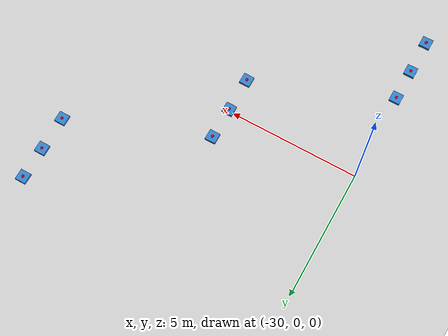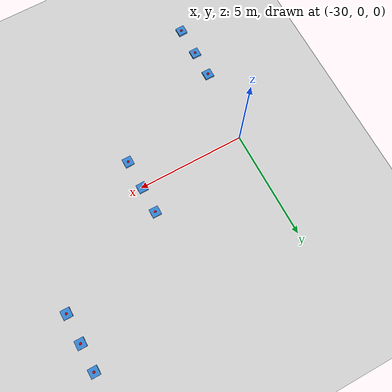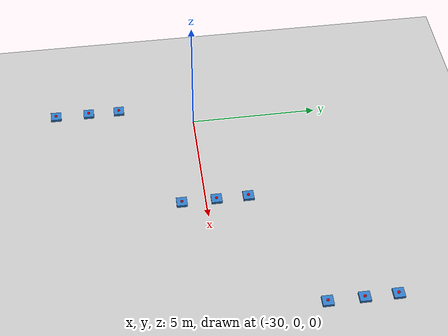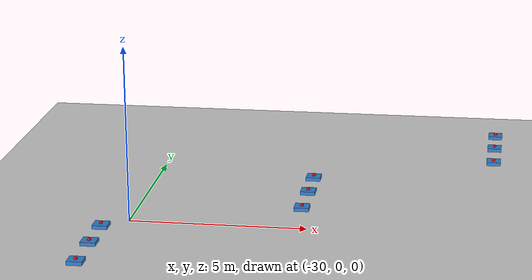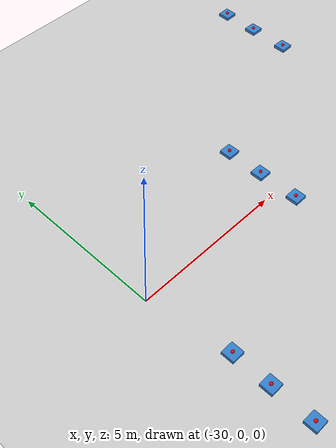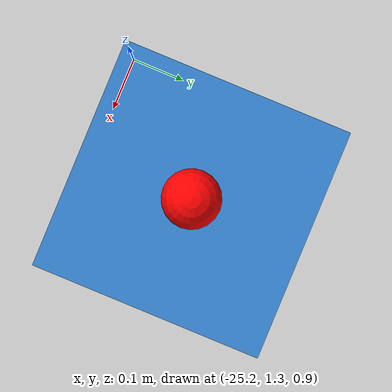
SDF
<?xml version="1.0"?>
<sdf version="1.6">
  <world name="formation_comparison_extended">

    <!-- Physics settings -->
    <physics name="default_physics" default="true" type="ode">
      <max_step_size>0.001</max_step_size>
      <real_time_factor>1.0</real_time_factor>
      <real_time_update_rate>1000</real_time_update_rate>
    </physics>

    <!-- Lighting -->
    <include>
      <uri>model://sun</uri>
    </include>

    <!-- Ground plane -->
    <include>
      <uri>model://ground_plane</uri>
    </include>

    <!-- Wind plugin - INCREASED for extended scenario -->
    <plugin name="wind_plugin" filename="libgazebo_wind_plugin.so">
      <frameId>world</frameId>
      <robotNamespace></robotNamespace>
      <xyzOffset>0 0 0</xyzOffset>
      <windDirectionMean>0 1 0</windDirectionMean>
      <windVelocityMean>0.0</windVelocityMean>
      <windGustDirection>0 1 0</windGustDirection>
      <windGustDuration>5</windGustDuration>
      <windGustStart>0</windGustStart>
      <windGustVelocityMean>0.0</windGustVelocityMean>
      <windPubTopic>wind</windPubTopic>
      <windForcePubTopic>wind/force</windForcePubTopic>
      <wind_force_mean>6.0</wind_force_mean>
      <wind_force_variance>2.0</wind_force_variance>
      <updateRate>10.0</updateRate>
    </plugin>

    <!-- GROUP 0: PID+Fuzzy (3 drones) - Bottom lane, EXTENDED starting position -->
    <model name="agent_0">
      <pose>-30 -5.5 0.5 0 0 0</pose>
      <include>
        <uri>model://simple_drone</uri>
      </include>
      <plugin name="simple_drone_plugin" filename="libsimple_drone_plugin.so">
        <robotNamespace>agent_0</robotNamespace>
        <updateRate>200.0</updateRate>
      </plugin>
    </model>

    <model name="agent_1">
      <pose>-30 -3.0 0.5 0 0 0</pose>
      <include>
        <uri>model://simple_drone</uri>
      </include>
      <plugin name="simple_drone_plugin" filename="libsimple_drone_plugin.so">
        <robotNamespace>agent_1</robotNamespace>
        <updateRate>200.0</updateRate>
      </plugin>
    </model>

    <model name="agent_2">
      <pose>-30 -4.2 0.5 0 0 0</pose>
      <include>
        <uri>model://simple_drone</uri>
      </include>
      <plugin name="simple_drone_plugin" filename="libsimple_drone_plugin.so">
        <robotNamespace>agent_2</robotNamespace>
        <updateRate>200.0</updateRate>
      </plugin>
    </model>

    <!-- GROUP 1: PD (3 drones) - Middle lane -->
    <model name="agent_3">
      <pose>-25 -1.0 0.5 0 0 0</pose>
      <include>
        <uri>model://simple_drone</uri>
      </include>
      <plugin name="simple_drone_plugin" filename="libsimple_drone_plugin.so">
        <robotNamespace>agent_3</robotNamespace>
        <updateRate>200.0</updateRate>
      </plugin>
    </model>

    <model name="agent_4">
      <pose>-25 1.5 0.5 0 0 0</pose>
      <include>
        <uri>model://simple_drone</uri>
      </include>
      <plugin name="simple_drone_plugin" filename="libsimple_drone_plugin.so">
        <robotNamespace>agent_4</robotNamespace>
        <updateRate>200.0</updateRate>
      </plugin>
    </model>

    <model name="agent_5">
      <pose>-25 0.3 0.5 0 0 0</pose>
      <include>
        <uri>model://simple_drone</uri>
      </include>
      <plugin name="simple_drone_plugin" filename="libsimple_drone_plugin.so">
        <robotNamespace>agent_5</robotNamespace>
        <updateRate>200.0</updateRate>
      </plugin>
    </model>

    <!-- GROUP 2: PID (3 drones) - Top lane -->
    <model name="agent_6">
      <pose>-20 3.5 0.5 0 0 0</pose>
      <include>
        <uri>model://simple_drone</uri>
      </include>
      <plugin name="simple_drone_plugin" filename="libsimple_drone_plugin.so">
        <robotNamespace>agent_6</robotNamespace>
        <updateRate>200.0</updateRate>
      </plugin>
    </model>

    <model name="agent_7">
      <pose>-20 6.0 0.5 0 0 0</pose>
      <include>
        <uri>model://simple_drone</uri>
      </include>
      <plugin name="simple_drone_plugin" filename="libsimple_drone_plugin.so">
        <robotNamespace>agent_7</robotNamespace>
        <updateRate>200.0</updateRate>
      </plugin>
    </model>

    <model name="agent_8">
      <pose>-20 4.8 0.5 0 0 0</pose>
      <include>
        <uri>model://simple_drone</uri>
      </include>
      <plugin name="simple_drone_plugin" filename="libsimple_drone_plugin.so">
        <robotNamespace>agent_8</robotNamespace>
        <updateRate>200.0</updateRate>
      </plugin>
    </model>

  </world>
</sdf>

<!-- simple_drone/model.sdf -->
<sdf version="1.6">
  <model name="simple_drone">
    <pose>0 0 0.5 0 0 0</pose>

    <!-- Main body -->
    <link name="base_link">
      <inertial>
        <mass>1.5</mass>
        <inertia>
          <ixx>0.0347563</ixx>
          <iyy>0.0458929</iyy>
          <izz>0.0977</izz>
          <ixy>0</ixy>
          <ixz>0</ixz>
          <iyz>0</iyz>
        </inertia>
      </inertial>

      <!-- Visual -->
      <visual name="visual">
        <geometry>
          <box>
            <size>0.4 0.4 0.1</size>
          </box>
        </geometry>
        <material>
          <ambient>0.2 0.5 0.8 1</ambient>
          <diffuse>0.2 0.5 0.8 1</diffuse>
        </material>
      </visual>

      <!-- Collision -->
      <collision name="collision">
        <geometry>
          <box>
            <size>0.4 0.4 0.1</size>
          </box>
        </geometry>
        <surface>
          <friction>
            <ode>
              <mu>0.1</mu>
              <mu2>0.1</mu2>
            </ode>
          </friction>
        </surface>
      </collision>

      <!-- Center marker (visual aid) -->
      <visual name="center_marker">
        <pose>0 0 0.06 0 0 0</pose>
        <geometry>
          <sphere>
            <radius>0.05</radius>
          </sphere>
        </geometry>
        <material>
          <ambient>1 0 0 1</ambient>
          <diffuse>1 0 0 1</diffuse>
        </material>
      </visual>
    </link>

    <!-- Plugin will be added in world file -->
  </model>
</sdf>
